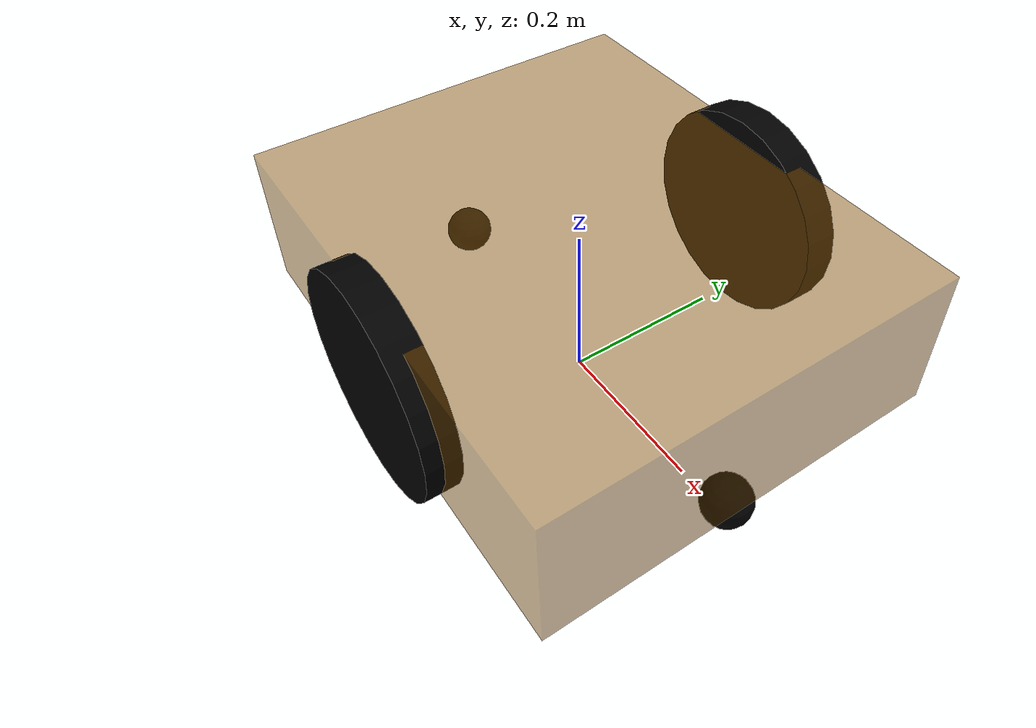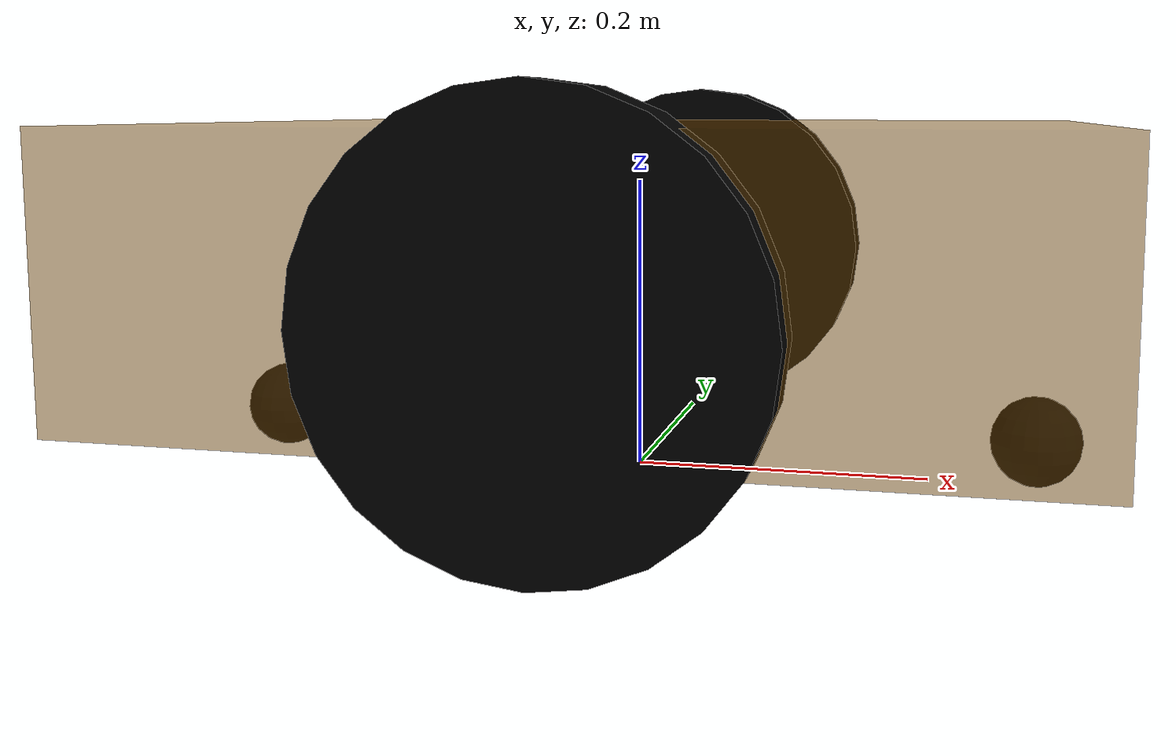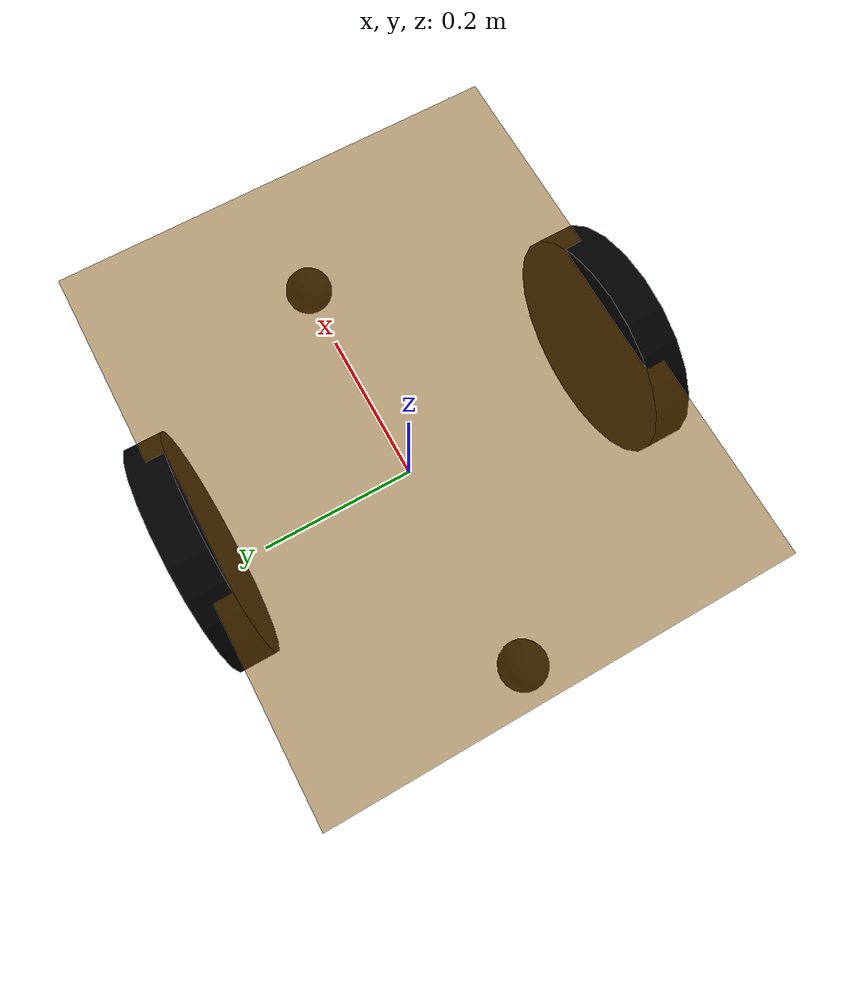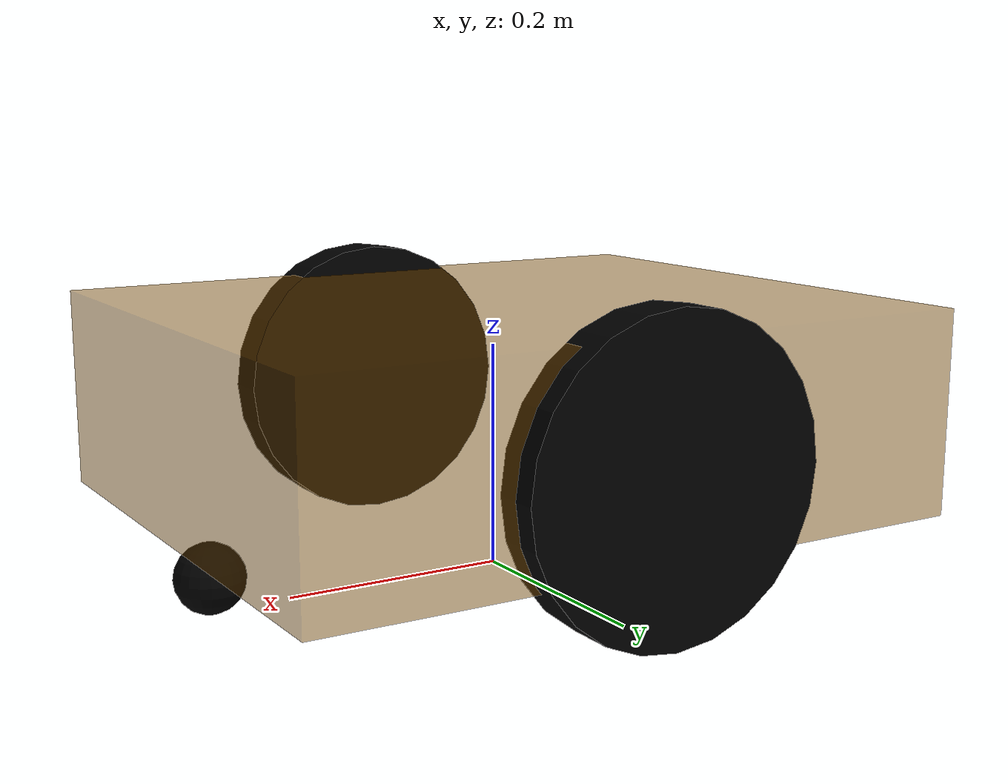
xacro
<!--
    使用 xacro 优化 URDF 版的小车底盘实现：

    实现思路:
    1.将一些常量、变量封装为 xacro:property
      比如:PI 值、小车底盘半径、离地间距、车轮半径、宽度 ....
    2.使用 宏 封装驱动轮以及支撑轮实现，调用相关宏生成驱动轮与支撑轮

-->
<!-- 根标签，必须声明 xmlns:xacro -->
<robot name="my_base" xmlns:xacro="http://www.ros.org/wiki/xacro">
    <!-- 封装变量、常量 -->
    <!-- PI 值设置精度需要高一些，否则后续车轮翻转量计算时，可能会出现肉眼不能察觉的车轮倾斜，从而导致模型抖动 -->
    <xacro:property name="PI" value="3.141592653589"/>
    <!-- 宏:黑色设置 -->
    <material name="black">
        <color rgba="0.0 0.0 0.0 1.0" />
    </material>
    <!-- 底盘属性，，，将变量封装成属性 -->
    <xacro:property name="base_footprint_radius" value="0.001" /> <!-- base_footprint 半径  -->
    <xacro:property name="base_link_length" value="0.60" /> <!-- 底盘长度 -->
    <xacro:property name="base_link_width" value="0.50" /> <!-- 底盘宽度 -->
    <xacro:property name="base_link_height" value="0.18" /> <!-- 底盘厚度 -->
    <xacro:property name="earth_space" value="0.06" /> <!-- 离地间距 -->
    <xacro:property name="base_link_m" value="10.00" /> <!-- 底盘质量  -->

    <!-- 底盘 -->
    <!-- 1、添加极小的点base_footprint，防止机器人位置出现在地平线下方 -->
    <link name="base_footprint">
      <visual>
        <geometry>
          <sphere radius="${base_footprint_radius}" />
        </geometry>
      </visual>
    </link>

    <link name="base_link">
      <visual>
        <geometry>
          <box size="${base_link_length} ${base_link_width} ${base_link_height}" />
        </geometry>
        <origin xyz="0 0 0" rpy="0 0 0" />
        <material name="yellow">
          <color rgba="0.5 0.3 0.0 0.5" />
        </material>
      </visual>
      <collision>
        <geometry>
          <box size="${base_link_length} ${base_link_width} ${base_link_height}" />
        </geometry>
        <origin xyz="0 0 0" rpy="0 0 0" />
      </collision>
      <xacro:Box_inertial_matrix m="${base_link_m}" l="${base_link_length}" w="${base_link_width}" h="${base_link_height}" />

    </link>

    <joint name="base_link2base_footprint" type="fixed">
      <parent link="base_footprint" />
      <child link="base_link" />
      <origin xyz="0 0 ${earth_space + base_link_height / 2 }" />
    </joint>
    <gazebo reference="base_link">
        <material>Gazebo/Yellow</material>
    </gazebo>

    <!-- 驱动轮 -->
    <!-- 驱动轮属性 -->
    <xacro:property name="wheel_radius" value="0.133" /><!-- 半径 -->
    <xacro:property name="wheel_length" value="0.041" /><!-- 厚度 -->
    <xacro:property name="wheel_m" value="2.0" /> <!-- 质量  -->

    <!-- 驱动轮宏实现 -->
    <xacro:macro name="add_wheels" params="name flag">
      <link name="${name}_wheel">
        <visual>
          <geometry>
            <cylinder radius="${wheel_radius}" length="${wheel_length}" />
          </geometry>
          <origin xyz="0.0 0.0 0.0" rpy="${PI / 2} 0.0 0.0" />
          <material name="black" />
        </visual>
        <collision>
          <geometry>
            <cylinder radius="${wheel_radius}" length="${wheel_length}" />
          </geometry>
          <origin xyz="0.0 0.0 0.0" rpy="${PI / 2} 0.0 0.0" />
        </collision>
        <xacro:cylinder_inertial_matrix m="${wheel_m}" r="${wheel_radius}" h="${wheel_length}" />

      </link>

      <joint name="${name}_wheel2base_link" type="continuous">
        <parent link="base_link" />
        <child link="${name}_wheel" />
        <origin xyz="0 ${flag * ((base_link_width / 2))} ${-((base_link_height / 2) + earth_space - wheel_radius) }" />
        <axis xyz="0 1 0" />
      </joint>

      <gazebo reference="${name}_wheel">
        <material>Gazebo/Red</material>
      </gazebo>

    </xacro:macro>
    <xacro:add_wheels name="left" flag="1" />
    <xacro:add_wheels name="right" flag="-1" />
    <!-- 支撑轮 -->
    <!-- 支撑轮属性 -->
    <xacro:property name="support_wheel_radius" value="0.03" /> <!-- 支撑轮半径 -->
    <xacro:property name="support_wheel_m" value="0.8" /> <!-- 质量  -->

    <!-- 支撑轮宏 -->
    <xacro:macro name="add_support_wheel" params="name flag" >
      <link name="${name}_wheel">
        <visual>
            <geometry>
                <sphere radius="${support_wheel_radius}" />
            </geometry>
            <origin xyz="0 0 0" rpy="0 0 0" />
            <material name="black" />
        </visual>
        <collision>
            <geometry>
                <sphere radius="${support_wheel_radius}" />
            </geometry>
            <origin xyz="0 0 0" rpy="0 0 0" />
        </collision>
        <xacro:sphere_inertial_matrix m="${support_wheel_m}" r="${support_wheel_radius}" />
      </link>

      <joint name="${name}_wheel2base_link" type="continuous">
          <parent link="base_link" />
          <child link="${name}_wheel" />
          <origin xyz="${flag * ((base_link_length / 2) - support_wheel_radius)} 0 ${-(base_link_height / 2 + earth_space / 2)}" />
          <axis xyz="1 1 1" />
      </joint>
      <gazebo reference="${name}_wheel">
        <material>Gazebo/Red</material>
      </gazebo>
    </xacro:macro>

    <xacro:add_support_wheel name="front" flag="1" />
    <xacro:add_support_wheel name="back" flag="-1" />

</robot>
